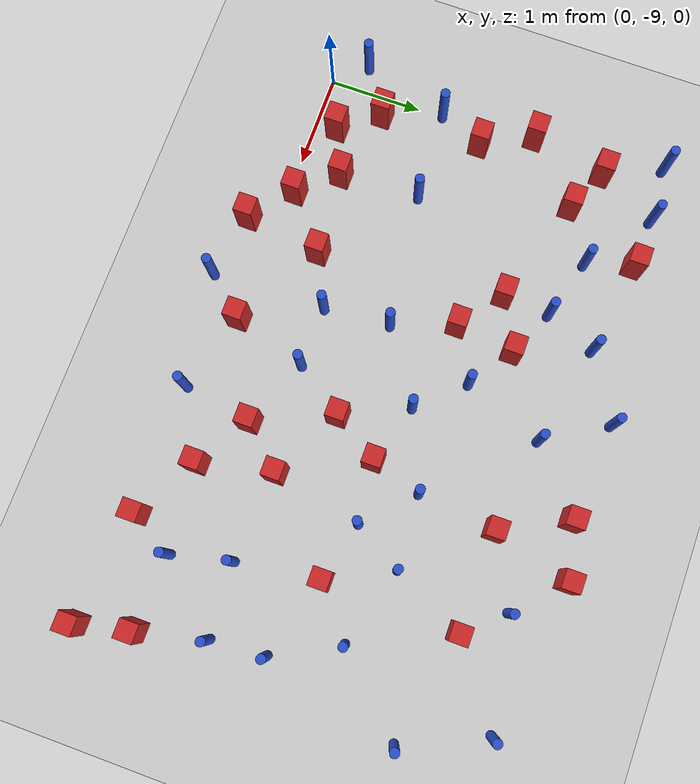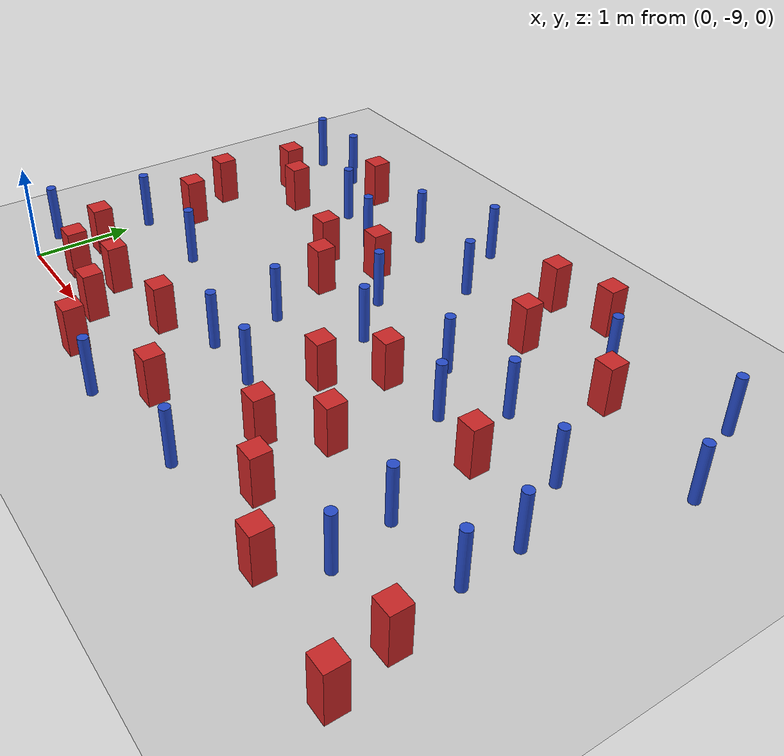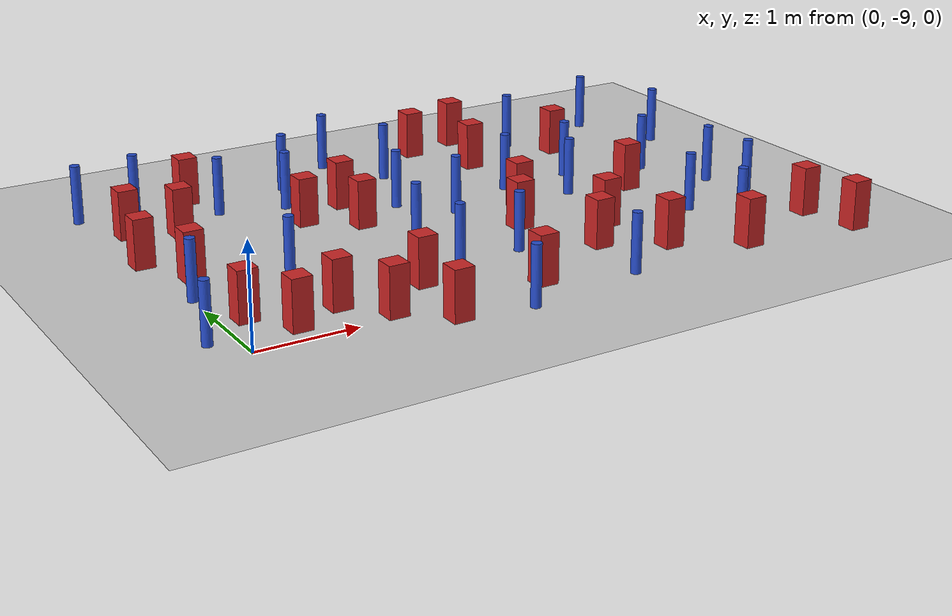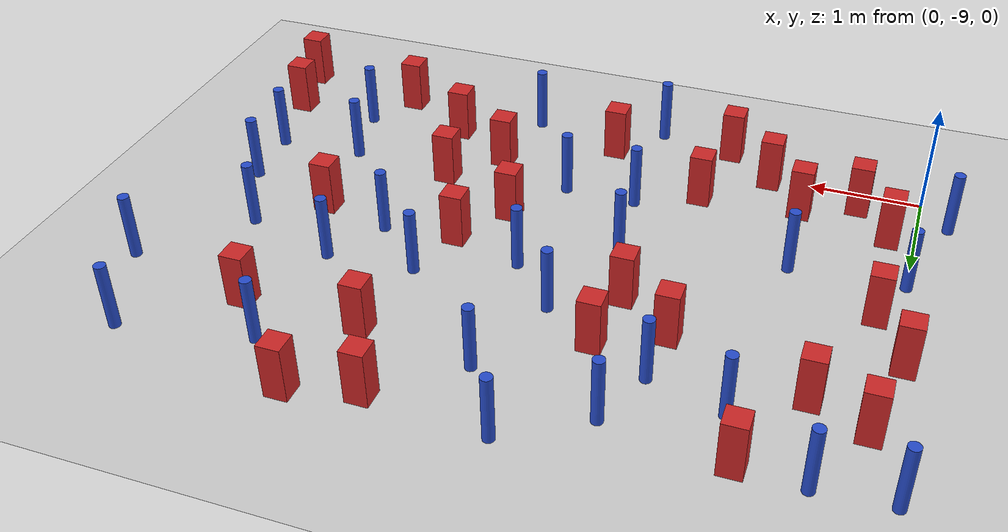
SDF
<sdf version="1.6">
 <world name="default">
  <model name="ground_plane">
   <static>1</static>
   <link name="link">
    <collision name="collision">
     <geometry><plane><normal>0 0 1</normal><size>100 100</size></plane></geometry>
     <surface><friction><ode><mu>100</mu><mu2>50</mu2></ode></friction></surface>
    </collision>
    <visual name="visual">
     <cast_shadows>0</cast_shadows>
     <geometry><plane><normal>0 0 1</normal><size>100 100</size></plane></geometry>
     <material>
      <ambient>1.0 1.0 1.0 1.0</ambient>
      <diffuse>0.8 0.8 0.8 1.0</diffuse>
      <specular>0.01 0.01 0.01 1.000000</specular>
     </material>
    </visual>
   </link>
  </model>
  <model name="pole_obstacle10">
   <static>true</static>
   <pose>3.1703029839 -6.97297233264 7.38925637345e-09 -8.47170692798e-08 1.24976765033e-08 -1.74513093019e-07</pose>
   <link name="link">
    <pose>0 0 0.3 0 -0 0</pose>
    <inertial>
     <mass>1</mass>
     <inertia><ixx>0.145833</ixx><ixy>0</ixy><ixz>0</ixz><iyy>0.145833</iyy><iyz>0</iyz><izz>0.125</izz></inertia>
    </inertial>
    <collision name="collision">
     <geometry><cylinder><radius>0.05</radius><length>.6</length></cylinder></geometry>
    </collision>
    <visual name="visual">
     <geometry><cylinder><radius>0.05</radius><length>.6</length></cylinder></geometry>
     <material>
      <script><name>Gazebo/Blue</name><uri>file://media/materials/scripts/gazebo.material</uri></script>
     </material>
    </visual>
   </link>
  </model>
  <model name="pole_obstacle11">
   <static>true</static>
   <pose>0.983680390515 -7.67062327463 7.38925637345e-09 -8.471706928e-08 1.24976765144e-08 -1.74513093012e-07</pose>
   <link name="link">
    <pose>0 0 0.3 0 -0 0</pose>
    <inertial>
     <mass>1</mass>
     <inertia><ixx>0.145833</ixx><ixy>0</ixy><ixz>0</ixz><iyy>0.145833</iyy><iyz>0</iyz><izz>0.125</izz></inertia>
    </inertial>
    <collision name="collision">
     <geometry><cylinder><radius>0.05</radius><length>.6</length></cylinder></geometry>
    </collision>
    <visual name="visual">
     <geometry><cylinder><radius>0.05</radius><length>.6</length></cylinder></geometry>
     <material>
      <script><name>Gazebo/Blue</name><uri>file://media/materials/scripts/gazebo.material</uri></script>
     </material>
    </visual>
   </link>
  </model>
  <model name="pole_obstacle12">
   <static>true</static>
   <pose>1.10796184703 -5.77790363404 7.38925637345e-09 -8.47170692799e-08 1.24976765033e-08 -1.74513093018e-07</pose>
   <link name="link">
    <pose>0 0 0.3 0 -0 0</pose>
    <inertial>
     <mass>1</mass>
     <inertia><ixx>0.145833</ixx><ixy>0</ixy><ixz>0</ixz><iyy>0.145833</iyy><iyz>0</iyz><izz>0.125</izz></inertia>
    </inertial>
    <collision name="collision">
     <geometry><cylinder><radius>0.05</radius><length>.6</length></cylinder></geometry>
    </collision>
    <visual name="visual">
     <geometry><cylinder><radius>0.05</radius><length>.6</length></cylinder></geometry>
     <material>
      <script><name>Gazebo/Blue</name><uri>file://media/materials/scripts/gazebo.material</uri></script>
     </material>
    </visual>
   </link>
  </model>
  <model name="square_post_obstacle19">
   <static>true</static>
   <pose>-0.0724727189926 -6.70868723467 1.91545236811e-07 -7.35059704564e-06 1.12565212e-07 2.39332434364e-05</pose>
   <link name="link">
    <pose>0 0 0.25 0 -0 0</pose>
    <inertial>
     <mass>100</mass>
     <inertia>
      <ixx>0.166667</ixx>
      <ixy>0</ixy>
      <ixz>0</ixz>
      <iyy>0.166667</iyy>
      <iyz>0</iyz>
      <izz>0.166667</izz>
     </inertia>
    </inertial>
    <collision name="collision"><geometry><box><size>.2 .2 .5</size></box></geometry></collision>
    <visual name="visual">
     <geometry><box><size>.2 .2 .5</size></box></geometry>
     <material>
      <script><name>Gazebo/Red</name><uri>file://media/materials/scripts/gazebo.material</uri></script>
     </material>
    </visual>
   </link>
  </model>
  <model name="square_post_obstacle21">
   <static>true</static>
   <pose>1.03362935635 -8.52608997644 1.91545236811e-07 -7.35059704564e-06 1.12565212e-07 2.39332434364e-05</pose>
   <link name="link">
    <pose>0 0 0.25 0 -0 0</pose>
    <inertial>
     <mass>100</mass>
     <inertia>
      <ixx>0.166667</ixx>
      <ixy>0</ixy>
      <ixz>0</ixz>
      <iyy>0.166667</iyy>
      <iyz>0</iyz>
      <izz>0.166667</izz>
     </inertia>
    </inertial>
    <collision name="collision"><geometry><box><size>.2 .2 .5</size></box></geometry></collision>
    <visual name="visual">
     <geometry><box><size>.2 .2 .5</size></box></geometry>
     <material>
      <script><name>Gazebo/Red</name><uri>file://media/materials/scripts/gazebo.material</uri></script>
     </material>
    </visual>
   </link>
  </model>
  <model name="square_post_obstacle22">
   <static>true</static>
   <pose>5.09969802318 -7.24370285172 1.91545236811e-07 -7.35059704564e-06 1.12565212e-07 2.39332434364e-05</pose>
   <link name="link">
    <pose>0 0 0.25 0 -0 0</pose>
    <inertial>
     <mass>100</mass>
     <inertia>
      <ixx>0.166667</ixx>
      <ixy>0</ixy>
      <ixz>0</ixz>
      <iyy>0.166667</iyy>
      <iyz>0</iyz>
      <izz>0.166667</izz>
     </inertia>
    </inertial>
    <collision name="collision"><geometry><box><size>.2 .2 .5</size></box></geometry></collision>
    <visual name="visual">
     <geometry><box><size>.2 .2 .5</size></box></geometry>
     <material>
      <script><name>Gazebo/Red</name><uri>file://media/materials/scripts/gazebo.material</uri></script>
     </material>
    </visual>
   </link>
  </model>
  <model name="pole_obstacle40">
   <static>true</static>
   <pose>2.66143875643 -4.99788259029 7.38925637345e-09 -8.47170692798e-08 1.24976765033e-08 -1.74513093019e-07</pose>
   <link name="link">
    <pose>0 0 0.3 0 -0 0</pose>
    <inertial>
     <mass>1</mass>
     <inertia><ixx>0.145833</ixx><ixy>0</ixy><ixz>0</ixz><iyy>0.145833</iyy><iyz>0</iyz><izz>0.125</izz></inertia>
    </inertial>
    <collision name="collision">
     <geometry><cylinder><radius>0.05</radius><length>.6</length></cylinder></geometry>
    </collision>
    <visual name="visual">
     <geometry><cylinder><radius>0.05</radius><length>.6</length></cylinder></geometry>
     <material>
      <script><name>Gazebo/Blue</name><uri>file://media/materials/scripts/gazebo.material</uri></script>
     </material>
    </visual>
   </link>
  </model>
  <model name="square_post_obstacle32">
   <static>true</static>
   <pose>4.43340542034 -8.83118302647 1.91545236811e-07 -7.35059704564e-06 1.12565212e-07 2.39332434364e-05</pose>
   <link name="link">
    <pose>0 0 0.25 0 -0 0</pose>
    <inertial>
     <mass>100</mass>
     <inertia>
      <ixx>0.166667</ixx>
      <ixy>0</ixy>
      <ixz>0</ixz>
      <iyy>0.166667</iyy>
      <iyz>0</iyz>
      <izz>0.166667</izz>
     </inertia>
    </inertial>
    <collision name="collision"><geometry><box><size>.2 .2 .5</size></box></geometry></collision>
    <visual name="visual">
     <geometry><box><size>.2 .2 .5</size></box></geometry>
     <material>
      <script><name>Gazebo/Red</name><uri>file://media/materials/scripts/gazebo.material</uri></script>
     </material>
    </visual>
   </link>
  </model>
  <model name="square_post_obstacle39">
   <static>true</static>
   <pose>5.1054562842 -9.20936905966 1.91545236811e-07 -7.35059704564e-06 1.12565212e-07 2.39332434364e-05</pose>
   <link name="link">
    <pose>0 0 0.25 0 -0 0</pose>
    <inertial>
     <mass>100</mass>
     <inertia>
      <ixx>0.166667</ixx>
      <ixy>0</ixy>
      <ixz>0</ixz>
      <iyy>0.166667</iyy>
      <iyz>0</iyz>
      <izz>0.166667</izz>
     </inertia>
    </inertial>
    <collision name="collision"><geometry><box><size>.2 .2 .5</size></box></geometry></collision>
    <visual name="visual">
     <geometry><box><size>.2 .2 .5</size></box></geometry>
     <material>
      <script><name>Gazebo/Red</name><uri>file://media/materials/scripts/gazebo.material</uri></script>
     </material>
    </visual>
   </link>
  </model>
  <model name="square_post_obstacle49">
   <static>true</static>
   <pose>0.555931448623 -6.10998923254 1.91545236811e-07 -7.35059704564e-06 1.12565212e-07 2.39332434364e-05</pose>
   <link name="link">
    <pose>0 0 0.25 0 -0 0</pose>
    <inertial>
     <mass>100</mass>
     <inertia>
      <ixx>0.166667</ixx>
      <ixy>0</ixy>
      <ixz>0</ixz>
      <iyy>0.166667</iyy>
      <iyz>0</iyz>
      <izz>0.166667</izz>
     </inertia>
    </inertial>
    <collision name="collision"><geometry><box><size>.2 .2 .5</size></box></geometry></collision>
    <visual name="visual">
     <geometry><box><size>.2 .2 .5</size></box></geometry>
     <material>
      <script><name>Gazebo/Red</name><uri>file://media/materials/scripts/gazebo.material</uri></script>
     </material>
    </visual>
   </link>
  </model>
  <model name="square_post_obstacle50">
   <static>true</static>
   <pose>4.26076043374 -8.04334189098 1.91545236811e-07 -7.35059704564e-06 1.12565212e-07 2.39332434364e-05</pose>
   <link name="link">
    <pose>0 0 0.25 0 -0 0</pose>
    <inertial>
     <mass>100</mass>
     <inertia>
      <ixx>0.166667</ixx>
      <ixy>0</ixy>
      <ixz>0</ixz>
      <iyy>0.166667</iyy>
      <iyz>0</iyz>
      <izz>0.166667</izz>
     </inertia>
    </inertial>
    <collision name="collision"><geometry><box><size>.2 .2 .5</size></box></geometry></collision>
    <visual name="visual">
     <geometry><box><size>.2 .2 .5</size></box></geometry>
     <material>
      <script><name>Gazebo/Red</name><uri>file://media/materials/scripts/gazebo.material</uri></script>
     </material>
    </visual>
   </link>
  </model>
  <model name="square_post_obstacle56">
   <static>true</static>
   <pose>4.06872304484 -5.78714098555 1.91545236811e-07 -7.35059704564e-06 1.12565212e-07 2.39332434364e-05</pose>
   <link name="link">
    <pose>0 0 0.25 0 -0 0</pose>
    <inertial>
     <mass>100</mass>
     <inertia>
      <ixx>0.166667</ixx>
      <ixy>0</ixy>
      <ixz>0</ixz>
      <iyy>0.166667</iyy>
      <iyz>0</iyz>
      <izz>0.166667</izz>
     </inertia>
    </inertial>
    <collision name="collision"><geometry><box><size>.2 .2 .5</size></box></geometry></collision>
    <visual name="visual">
     <geometry><box><size>.2 .2 .5</size></box></geometry>
     <material>
      <script><name>Gazebo/Red</name><uri>file://media/materials/scripts/gazebo.material</uri></script>
     </material>
    </visual>
   </link>
  </model>
  <model name="pole_obstacle73">
   <static>true</static>
   <pose>4.46687518273 -7.09056662381 7.38925637345e-09 -8.47170692796e-08 1.24976764786e-08 -1.74513093032e-07</pose>
   <link name="link">
    <pose>0 0 0.3 0 -0 0</pose>
    <inertial>
     <mass>1</mass>
     <inertia><ixx>0.145833</ixx><ixy>0</ixy><ixz>0</ixz><iyy>0.145833</iyy><iyz>0</iyz><izz>0.125</izz></inertia>
    </inertial>
    <collision name="collision">
     <geometry><cylinder><radius>0.05</radius><length>.6</length></cylinder></geometry>
    </collision>
    <visual name="visual">
     <geometry><cylinder><radius>0.05</radius><length>.6</length></cylinder></geometry>
     <material>
      <script><name>Gazebo/Blue</name><uri>file://media/materials/scripts/gazebo.material</uri></script>
     </material>
    </visual>
   </link>
  </model>
  <model name="pole_obstacle74">
   <static>true</static>
   <pose>6.33678386441 -6.04725509804 7.38925637345e-09 -8.47170692796e-08 1.24976764786e-08 -1.74513093032e-07</pose>
   <link name="link">
    <pose>0 0 0.3 0 -0 0</pose>
    <inertial>
     <mass>1</mass>
     <inertia><ixx>0.145833</ixx><ixy>0</ixy><ixz>0</ixz><iyy>0.145833</iyy><iyz>0</iyz><izz>0.125</izz></inertia>
    </inertial>
    <collision name="collision">
     <geometry><cylinder><radius>0.05</radius><length>.6</length></cylinder></geometry>
    </collision>
    <visual name="visual">
     <geometry><cylinder><radius>0.05</radius><length>.6</length></cylinder></geometry>
     <material>
      <script><name>Gazebo/Blue</name><uri>file://media/materials/scripts/gazebo.material</uri></script>
     </material>
    </visual>
   </link>
  </model>
  <model name="pole_obstacle76">
   <static>true</static>
   <pose>2.42033563123 -7.47985619556 7.38925637345e-09 -8.47170692798e-08 1.24976765033e-08 -1.74513093019e-07</pose>
   <link name="link">
    <pose>0 0 0.3 0 -0 0</pose>
    <inertial>
     <mass>1</mass>
     <inertia><ixx>0.145833</ixx><ixy>0</ixy><ixz>0</ixz><iyy>0.145833</iyy><iyz>0</iyz><izz>0.125</izz></inertia>
    </inertial>
    <collision name="collision">
     <geometry><cylinder><radius>0.05</radius><length>.6</length></cylinder></geometry>
    </collision>
    <visual name="visual">
     <geometry><cylinder><radius>0.05</radius><length>.6</length></cylinder></geometry>
     <material>
      <script><name>Gazebo/Blue</name><uri>file://media/materials/scripts/gazebo.material</uri></script>
     </material>
    </visual>
   </link>
  </model>
  <model name="pole_obstacle85">
   <static>true</static>
   <pose>0.417072804881 -5.25463096501 7.38925637345e-09 -8.471706928e-08 1.24976765079e-08 -1.74513093015e-07</pose>
   <link name="link">
    <pose>0 0 0.3 0 -0 0</pose>
    <inertial>
     <mass>1</mass>
     <inertia><ixx>0.145833</ixx><ixy>0</ixy><ixz>0</ixz><iyy>0.145833</iyy><iyz>0</iyz><izz>0.125</izz></inertia>
    </inertial>
    <collision name="collision">
     <geometry><cylinder><radius>0.05</radius><length>.6</length></cylinder></geometry>
    </collision>
    <visual name="visual">
     <geometry><cylinder><radius>0.05</radius><length>.6</length></cylinder></geometry>
     <material>
      <script><name>Gazebo/Blue</name><uri>file://media/materials/scripts/gazebo.material</uri></script>
     </material>
    </visual>
   </link>
  </model>
  <model name="pole_obstacle86">
   <static>true</static>
   <pose>-0.189228235769 -5.29356077039 7.38925637345e-09 -8.47170692799e-08 1.24976765068e-08 -1.74513093018e-07</pose>
   <link name="link">
    <pose>0 0 0.3 0 -0 0</pose>
    <inertial>
     <mass>1</mass>
     <inertia><ixx>0.145833</ixx><ixy>0</ixy><ixz>0</ixz><iyy>0.145833</iyy><iyz>0</iyz><izz>0.125</izz></inertia>
    </inertial>
    <collision name="collision">
     <geometry><cylinder><radius>0.05</radius><length>.6</length></cylinder></geometry>
    </collision>
    <visual name="visual">
     <geometry><cylinder><radius>0.05</radius><length>.6</length></cylinder></geometry>
     <material>
      <script><name>Gazebo/Blue</name><uri>file://media/materials/scripts/gazebo.material</uri></script>
     </material>
    </visual>
   </link>
  </model>
  <model name="square_post_obstacle75">
   <static>true</static>
   <pose>3.4981273184 -7.65652750813 1.91545236811e-07 -7.35059704564e-06 1.12565212e-07 2.39332434364e-05</pose>
   <link name="link">
    <pose>0 0 0.25 0 -0 0</pose>
    <inertial>
     <mass>100</mass>
     <inertia>
      <ixx>0.166667</ixx>
      <ixy>0</ixy>
      <ixz>0</ixz>
      <iyy>0.166667</iyy>
      <iyz>0</iyz>
      <izz>0.166667</izz>
     </inertia>
    </inertial>
    <collision name="collision"><geometry><box><size>.2 .2 .5</size></box></geometry></collision>
    <visual name="visual">
     <geometry><box><size>.2 .2 .5</size></box></geometry>
     <material>
      <script><name>Gazebo/Red</name><uri>file://media/materials/scripts/gazebo.material</uri></script>
     </material>
    </visual>
   </link>
  </model>
  <model name="square_post_obstacle92">
   <static>true</static>
   <pose>6.30461932808 -9.37592968788 1.91545236811e-07 -7.35059704564e-06 1.12565212e-07 2.39332434364e-05</pose>
   <link name="link">
    <pose>0 0 0.25 0 -0 0</pose>
    <inertial>
     <mass>100</mass>
     <inertia>
      <ixx>0.166667</ixx>
      <ixy>0</ixy>
      <ixz>0</ixz>
      <iyy>0.166667</iyy>
      <iyz>0</iyz>
      <izz>0.166667</izz>
     </inertia>
    </inertial>
    <collision name="collision"><geometry><box><size>.2 .2 .5</size></box></geometry></collision>
    <visual name="visual">
     <geometry><box><size>.2 .2 .5</size></box></geometry>
     <material>
      <script><name>Gazebo/Red</name><uri>file://media/materials/scripts/gazebo.material</uri></script>
     </material>
    </visual>
   </link>
  </model>
  <model name="square_post_obstacle94">
   <static>true</static>
   <pose>1.72505933252 -6.46990505975 1.91545236811e-07 -7.35059704564e-06 1.12565212e-07 2.39332434364e-05</pose>
   <link name="link">
    <pose>0 0 0.25 0 -0 0</pose>
    <inertial>
     <mass>100</mass>
     <inertia>
      <ixx>0.166667</ixx>
      <ixy>0</ixy>
      <ixz>0</ixz>
      <iyy>0.166667</iyy>
      <iyz>0</iyz>
      <izz>0.166667</izz>
     </inertia>
    </inertial>
    <collision name="collision"><geometry><box><size>.2 .2 .5</size></box></geometry></collision>
    <visual name="visual">
     <geometry><box><size>.2 .2 .5</size></box></geometry>
     <material>
      <script><name>Gazebo/Red</name><uri>file://media/materials/scripts/gazebo.material</uri></script>
     </material>
    </visual>
   </link>
  </model>
  <model name="pole_obstacle102">
   <static>true</static>
   <pose>5.23372738075 -8.13172029675 7.38925637345e-09 -8.471706928e-08 1.24976765081e-08 -1.74513093015e-07</pose>
   <link name="link">
    <pose>0 0 0.3 0 -0 0</pose>
    <inertial>
     <mass>1</mass>
     <inertia><ixx>0.145833</ixx><ixy>0</ixy><ixz>0</ixz><iyy>0.145833</iyy><iyz>0</iyz><izz>0.125</izz></inertia>
    </inertial>
    <collision name="collision">
     <geometry><cylinder><radius>0.05</radius><length>.6</length></cylinder></geometry>
    </collision>
    <visual name="visual">
     <geometry><cylinder><radius>0.05</radius><length>.6</length></cylinder></geometry>
     <material>
      <script><name>Gazebo/Blue</name><uri>file://media/materials/scripts/gazebo.material</uri></script>
     </material>
    </visual>
   </link>
  </model>
  <model name="pole_obstacle103">
   <static>true</static>
   <pose>4.7886705059 -5.39762330678 7.38925637345e-09 -8.47170692796e-08 1.24976764786e-08 -1.74513093032e-07</pose>
   <link name="link">
    <pose>0 0 0.3 0 -0 0</pose>
    <inertial>
     <mass>1</mass>
     <inertia><ixx>0.145833</ixx><ixy>0</ixy><ixz>0</ixz><iyy>0.145833</iyy><iyz>0</iyz><izz>0.125</izz></inertia>
    </inertial>
    <collision name="collision">
     <geometry><cylinder><radius>0.05</radius><length>.6</length></cylinder></geometry>
    </collision>
    <visual name="visual">
     <geometry><cylinder><radius>0.05</radius><length>.6</length></cylinder></geometry>
     <material>
      <script><name>Gazebo/Blue</name><uri>file://media/materials/scripts/gazebo.material</uri></script>
     </material>
    </visual>
   </link>
  </model>
  <model name="square_post_obstacle98">
   <static>true</static>
   <pose>2.18868649435 -6.82100554461 1.91545236811e-07 -7.35059704564e-06 1.12565212e-07 2.39332434364e-05</pose>
   <link name="link">
    <pose>0 0 0.25 0 -0 0</pose>
    <inertial>
     <mass>100</mass>
     <inertia>
      <ixx>0.166667</ixx>
      <ixy>0</ixy>
      <ixz>0</ixz>
      <iyy>0.166667</iyy>
      <iyz>0</iyz>
      <izz>0.166667</izz>
     </inertia>
    </inertial>
    <collision name="collision"><geometry><box><size>.2 .2 .5</size></box></geometry></collision>
    <visual name="visual">
     <geometry><box><size>.2 .2 .5</size></box></geometry>
     <material>
      <script><name>Gazebo/Red</name><uri>file://media/materials/scripts/gazebo.material</uri></script>
     </material>
    </visual>
   </link>
  </model>
  <model name="pole_obstacle109">
   <static>true</static>
   <pose>2.48100772865 -8.18891334359 7.38925637345e-09 -8.47170692793e-08 1.24976764408e-08 -1.74513093041e-07</pose>
   <link name="link">
    <pose>0 0 0.3 0 -0 0</pose>
    <inertial>
     <mass>1</mass>
     <inertia><ixx>0.145833</ixx><ixy>0</ixy><ixz>0</ixz><iyy>0.145833</iyy><iyz>0</iyz><izz>0.125</izz></inertia>
    </inertial>
    <collision name="collision">
     <geometry><cylinder><radius>0.05</radius><length>.6</length></cylinder></geometry>
    </collision>
    <visual name="visual">
     <geometry><cylinder><radius>0.05</radius><length>.6</length></cylinder></geometry>
     <material>
      <script><name>Gazebo/Blue</name><uri>file://media/materials/scripts/gazebo.material</uri></script>
     </material>
    </visual>
   </link>
  </model>
  <model name="pole_obstacle114">
   <static>true</static>
   <pose>3.13246578591 -8.19828329651 7.38925637345e-09 -8.47170692793e-08 1.24976764408e-08 -1.74513093041e-07</pose>
   <link name="link">
    <pose>0 0 0.3 0 -0 0</pose>
    <inertial>
     <mass>1</mass>
     <inertia><ixx>0.145833</ixx><ixy>0</ixy><ixz>0</ixz><iyy>0.145833</iyy><iyz>0</iyz><izz>0.125</izz></inertia>
    </inertial>
    <collision name="collision">
     <geometry><cylinder><radius>0.05</radius><length>.6</length></cylinder></geometry>
    </collision>
    <visual name="visual">
     <geometry><cylinder><radius>0.05</radius><length>.6</length></cylinder></geometry>
     <material>
      <script><name>Gazebo/Blue</name><uri>file://media/materials/scripts/gazebo.material</uri></script>
     </material>
    </visual>
   </link>
  </model>
  <model name="square_post_obstacle112">
   <static>true</static>
   <pose>5.13251254335 -5.80364294433 1.91545236811e-07 -7.35059704564e-06 1.12565212e-07 2.39332434364e-05</pose>
   <link name="link">
    <pose>0 0 0.25 0 -0 0</pose>
    <inertial>
     <mass>100</mass>
     <inertia>
      <ixx>0.166667</ixx>
      <ixy>0</ixy>
      <ixz>0</ixz>
      <iyy>0.166667</iyy>
      <iyz>0</iyz>
      <izz>0.166667</izz>
     </inertia>
    </inertial>
    <collision name="collision"><geometry><box><size>.2 .2 .5</size></box></geometry></collision>
    <visual name="visual">
     <geometry><box><size>.2 .2 .5</size></box></geometry>
     <material>
      <script><name>Gazebo/Red</name><uri>file://media/materials/scripts/gazebo.material</uri></script>
     </material>
    </visual>
   </link>
  </model>
  <model name="square_post_obstacle116">
   <static>true</static>
   <pose>1.80866934084 -9.28205349043 1.91545236811e-07 -7.35059704564e-06 1.12565212e-07 2.39332434364e-05</pose>
   <link name="link">
    <pose>0 0 0.25 0 -0 0</pose>
    <inertial>
     <mass>100</mass>
     <inertia>
      <ixx>0.166667</ixx>
      <ixy>0</ixy>
      <ixz>0</ixz>
      <iyy>0.166667</iyy>
      <iyz>0</iyz>
      <izz>0.166667</izz>
     </inertia>
    </inertial>
    <collision name="collision"><geometry><box><size>.2 .2 .5</size></box></geometry></collision>
    <visual name="visual">
     <geometry><box><size>.2 .2 .5</size></box></geometry>
     <material>
      <script><name>Gazebo/Red</name><uri>file://media/materials/scripts/gazebo.material</uri></script>
     </material>
    </visual>
   </link>
  </model>
  <model name="square_post_obstacle119">
   <static>true</static>
   <pose>2.87968242865 -8.98380233681 1.91545236811e-07 -7.35059704564e-06 1.12565212e-07 2.39332434364e-05</pose>
   <link name="link">
    <pose>0 0 0.25 0 -0 0</pose>
    <inertial>
     <mass>100</mass>
     <inertia>
      <ixx>0.166667</ixx>
      <ixy>0</ixy>
      <ixz>0</ixz>
      <iyy>0.166667</iyy>
      <iyz>0</iyz>
      <izz>0.166667</izz>
     </inertia>
    </inertial>
    <collision name="collision"><geometry><box><size>.2 .2 .5</size></box></geometry></collision>
    <visual name="visual">
     <geometry><box><size>.2 .2 .5</size></box></geometry>
     <material>
      <script><name>Gazebo/Red</name><uri>file://media/materials/scripts/gazebo.material</uri></script>
     </material>
    </visual>
   </link>
  </model>
  <model name="pole_obstacle120">
   <static>true</static>
   <pose>3.06437324797 -5.652648721 7.38925637345e-09 -8.47170692798e-08 1.24976765033e-08 -1.74513093019e-07</pose>
   <link name="link">
    <pose>0 0 0.3 0 -0 0</pose>
    <inertial>
     <mass>1</mass>
     <inertia><ixx>0.145833</ixx><ixy>0</ixy><ixz>0</ixz><iyy>0.145833</iyy><iyz>0</iyz><izz>0.125</izz></inertia>
    </inertial>
    <collision name="collision">
     <geometry><cylinder><radius>0.05</radius><length>.6</length></cylinder></geometry>
    </collision>
    <visual name="visual">
     <geometry><cylinder><radius>0.05</radius><length>.6</length></cylinder></geometry>
     <material>
      <script><name>Gazebo/Blue</name><uri>file://media/materials/scripts/gazebo.material</uri></script>
     </material>
    </visual>
   </link>
  </model>
  <model name="square_post_obstacle121">
   <static>true</static>
   <pose>3.71244147093 -5.09058006 1.91545236811e-07 -7.35059704564e-06 1.12565212e-07 2.39332434364e-05</pose>
   <link name="link">
    <pose>0 0 0.25 0 -0 0</pose>
    <inertial>
     <mass>100</mass>
     <inertia>
      <ixx>0.166667</ixx>
      <ixy>0</ixy>
      <ixz>0</ixz>
      <iyy>0.166667</iyy>
      <iyz>0</iyz>
      <izz>0.166667</izz>
     </inertia>
    </inertial>
    <collision name="collision"><geometry><box><size>.2 .2 .5</size></box></geometry></collision>
    <visual name="visual">
     <geometry><box><size>.2 .2 .5</size></box></geometry>
     <material>
      <script><name>Gazebo/Red</name><uri>file://media/materials/scripts/gazebo.material</uri></script>
     </material>
    </visual>
   </link>
  </model>
  <model name="pole_obstacle141">
   <static>true</static>
   <pose>5.94559134048 -5.18586401756 7.38925637345e-09 -8.47170692796e-08 1.24976764786e-08 -1.74513093032e-07</pose>
   <link name="link">
    <pose>0 0 0.3 0 -0 0</pose>
    <inertial>
     <mass>1</mass>
     <inertia><ixx>0.145833</ixx><ixy>0</ixy><ixz>0</ixz><iyy>0.145833</iyy><iyz>0</iyz><izz>0.125</izz></inertia>
    </inertial>
    <collision name="collision">
     <geometry><cylinder><radius>0.05</radius><length>.6</length></cylinder></geometry>
    </collision>
    <visual name="visual">
     <geometry><cylinder><radius>0.05</radius><length>.6</length></cylinder></geometry>
     <material>
      <script><name>Gazebo/Blue</name><uri>file://media/materials/scripts/gazebo.material</uri></script>
     </material>
    </visual>
   </link>
  </model>
  <model name="pole_obstacle145">
   <static>true</static>
   <pose>3.73564953144 -9.23345430363 7.38925637345e-09 -8.47170692793e-08 1.24976764408e-08 -1.74513093041e-07</pose>
   <link name="link">
    <pose>0 0 0.3 0 -0 0</pose>
    <inertial>
     <mass>1</mass>
     <inertia><ixx>0.145833</ixx><ixy>0</ixy><ixz>0</ixz><iyy>0.145833</iyy><iyz>0</iyz><izz>0.125</izz></inertia>
    </inertial>
    <collision name="collision">
     <geometry><cylinder><radius>0.05</radius><length>.6</length></cylinder></geometry>
    </collision>
    <visual name="visual">
     <geometry><cylinder><radius>0.05</radius><length>.6</length></cylinder></geometry>
     <material>
      <script><name>Gazebo/Blue</name><uri>file://media/materials/scripts/gazebo.material</uri></script>
     </material>
    </visual>
   </link>
  </model>
  <model name="square_post_obstacle141">
   <static>true</static>
   <pose>0.229889351839 -8.34318246683 1.91545236811e-07 -7.35059704564e-06 1.12565212e-07 2.39332434364e-05</pose>
   <link name="link">
    <pose>0 0 0.25 0 -0 0</pose>
    <inertial>
     <mass>100</mass>
     <inertia>
      <ixx>0.166667</ixx>
      <ixy>0</ixy>
      <ixz>0</ixz>
      <iyy>0.166667</iyy>
      <iyz>0</iyz>
      <izz>0.166667</izz>
     </inertia>
    </inertial>
    <collision name="collision"><geometry><box><size>.2 .2 .5</size></box></geometry></collision>
    <visual name="visual">
     <geometry><box><size>.2 .2 .5</size></box></geometry>
     <material>
      <script><name>Gazebo/Red</name><uri>file://media/materials/scripts/gazebo.material</uri></script>
     </material>
    </visual>
   </link>
  </model>
  <model name="pole_obstacle151">
   <static>true</static>
   <pose>3.9799464218 -6.61976906689 7.38925637345e-09 -8.47170692798e-08 1.24976764915e-08 -1.74513093026e-07</pose>
   <link name="link">
    <pose>0 0 0.3 0 -0 0</pose>
    <inertial>
     <mass>1</mass>
     <inertia><ixx>0.145833</ixx><ixy>0</ixy><ixz>0</ixz><iyy>0.145833</iyy><iyz>0</iyz><izz>0.125</izz></inertia>
    </inertial>
    <collision name="collision">
     <geometry><cylinder><radius>0.05</radius><length>.6</length></cylinder></geometry>
    </collision>
    <visual name="visual">
     <geometry><cylinder><radius>0.05</radius><length>.6</length></cylinder></geometry>
     <material>
      <script><name>Gazebo/Blue</name><uri>file://media/materials/scripts/gazebo.material</uri></script>
     </material>
    </visual>
   </link>
  </model>
  <model name="pole_obstacle153">
   <static>true</static>
   <pose>4.76580248344 -6.56621628357 7.38925637345e-09 -8.47170692796e-08 1.24976764786e-08 -1.74513093032e-07</pose>
   <link name="link">
    <pose>0 0 0.3 0 -0 0</pose>
    <inertial>
     <mass>1</mass>
     <inertia><ixx>0.145833</ixx><ixy>0</ixy><ixz>0</ixz><iyy>0.145833</iyy><iyz>0</iyz><izz>0.125</izz></inertia>
    </inertial>
    <collision name="collision">
     <geometry><cylinder><radius>0.05</radius><length>.6</length></cylinder></geometry>
    </collision>
    <visual name="visual">
     <geometry><cylinder><radius>0.05</radius><length>.6</length></cylinder></geometry>
     <material>
      <script><name>Gazebo/Blue</name><uri>file://media/materials/scripts/gazebo.material</uri></script>
     </material>
    </visual>
   </link>
  </model>
  <model name="pole_obstacle158">
   <static>true</static>
   <pose>5.97281116155 -7.49747539144 7.38925637345e-09 -8.47170692796e-08 1.24976764786e-08 -1.74513093032e-07</pose>
   <link name="link">
    <pose>0 0 0.3 0 -0 0</pose>
    <inertial>
     <mass>1</mass>
     <inertia><ixx>0.145833</ixx><ixy>0</ixy><ixz>0</ixz><iyy>0.145833</iyy><iyz>0</iyz><izz>0.125</izz></inertia>
    </inertial>
    <collision name="collision">
     <geometry><cylinder><radius>0.05</radius><length>.6</length></cylinder></geometry>
    </collision>
    <visual name="visual">
     <geometry><cylinder><radius>0.05</radius><length>.6</length></cylinder></geometry>
     <material>
      <script><name>Gazebo/Blue</name><uri>file://media/materials/scripts/gazebo.material</uri></script>
     </material>
    </visual>
   </link>
  </model>
  <model name="pole_obstacle159">
   <static>true</static>
   <pose>1.76154018008 -5.96151709383 7.38925637345e-09 -8.47170692799e-08 1.24976765033e-08 -1.74513093018e-07</pose>
   <link name="link">
    <pose>0 0 0.3 0 -0 0</pose>
    <inertial>
     <mass>1</mass>
     <inertia><ixx>0.145833</ixx><ixy>0</ixy><ixz>0</ixz><iyy>0.145833</iyy><iyz>0</iyz><izz>0.125</izz></inertia>
    </inertial>
    <collision name="collision">
     <geometry><cylinder><radius>0.05</radius><length>.6</length></cylinder></geometry>
    </collision>
    <visual name="visual">
     <geometry><cylinder><radius>0.05</radius><length>.6</length></cylinder></geometry>
     <material>
      <script><name>Gazebo/Blue</name><uri>file://media/materials/scripts/gazebo.material</uri></script>
     </material>
    </visual>
   </link>
  </model>
  <model name="square_post_obstacle156">
   <static>true</static>
   <pose>0.200325030159 -7.24479141687 1.91545236811e-07 -7.35059704564e-06 1.12565212e-07 2.39332434364e-05</pose>
   <link name="link">
    <pose>0 0 0.25 0 -0 0</pose>
    <inertial>
     <mass>100</mass>
     <inertia>
      <ixx>0.166667</ixx>
      <ixy>0</ixy>
      <ixz>0</ixz>
      <iyy>0.166667</iyy>
      <iyz>0</iyz>
      <izz>0.166667</izz>
     </inertia>
    </inertial>
    <collision name="collision"><geometry><box><size>.2 .2 .5</size></box></geometry></collision>
    <visual name="visual">
     <geometry><box><size>.2 .2 .5</size></box></geometry>
     <material>
      <script><name>Gazebo/Red</name><uri>file://media/materials/scripts/gazebo.material</uri></script>
     </material>
    </visual>
   </link>
  </model>
  <model name="pole_obstacle165">
   <static>true</static>
   <pose>6.01590157862 -8.08557440881 7.38925637345e-09 -8.471706928e-08 1.24976765081e-08 -1.74513093015e-07</pose>
   <link name="link">
    <pose>0 0 0.3 0 -0 0</pose>
    <inertial>
     <mass>1</mass>
     <inertia><ixx>0.145833</ixx><ixy>0</ixy><ixz>0</ixz><iyy>0.145833</iyy><iyz>0</iyz><izz>0.125</izz></inertia>
    </inertial>
    <collision name="collision">
     <geometry><cylinder><radius>0.05</radius><length>.6</length></cylinder></geometry>
    </collision>
    <visual name="visual">
     <geometry><cylinder><radius>0.05</radius><length>.6</length></cylinder></geometry>
     <material>
      <script><name>Gazebo/Blue</name><uri>file://media/materials/scripts/gazebo.material</uri></script>
     </material>
    </visual>
   </link>
  </model>
  <model name="square_post_obstacle160">
   <static>true</static>
   <pose>1.37683871091 -8.91965066821 1.91545236811e-07 -7.35059704564e-06 1.12565212e-07 2.39332434364e-05</pose>
   <link name="link">
    <pose>0 0 0.25 0 -0 0</pose>
    <inertial>
     <mass>100</mass>
     <inertia>
      <ixx>0.166667</ixx>
      <ixy>0</ixy>
      <ixz>0</ixz>
      <iyy>0.166667</iyy>
      <iyz>0</iyz>
      <izz>0.166667</izz>
     </inertia>
    </inertial>
    <collision name="collision"><geometry><box><size>.2 .2 .5</size></box></geometry></collision>
    <visual name="visual">
     <geometry><box><size>.2 .2 .5</size></box></geometry>
     <material>
      <script><name>Gazebo/Red</name><uri>file://media/materials/scripts/gazebo.material</uri></script>
     </material>
    </visual>
   </link>
  </model>
  <model name="square_post_obstacle161">
   <static>true</static>
   <pose>2.26910733237 -6.19505798571 1.91545236811e-07 -7.35059704564e-06 1.12565212e-07 2.39332434364e-05</pose>
   <link name="link">
    <pose>0 0 0.25 0 -0 0</pose>
    <inertial>
     <mass>100</mass>
     <inertia>
      <ixx>0.166667</ixx>
      <ixy>0</ixy>
      <ixz>0</ixz>
      <iyy>0.166667</iyy>
      <iyz>0</iyz>
      <izz>0.166667</izz>
     </inertia>
    </inertial>
    <collision name="collision"><geometry><box><size>.2 .2 .5</size></box></geometry></collision>
    <visual name="visual">
     <geometry><box><size>.2 .2 .5</size></box></geometry>
     <material>
      <script><name>Gazebo/Red</name><uri>file://media/materials/scripts/gazebo.material</uri></script>
     </material>
    </visual>
   </link>
  </model>
  <model name="square_post_obstacle168">
   <static>true</static>
   <pose>0.0847775372866 -5.90505663985 1.91545236811e-07 -7.35059704564e-06 1.12565212e-07 2.39332434364e-05</pose>
   <link name="link">
    <pose>0 0 0.25 0 -0 0</pose>
    <inertial>
     <mass>100</mass>
     <inertia>
      <ixx>0.166667</ixx>
      <ixy>0</ixy>
      <ixz>0</ixz>
      <iyy>0.166667</iyy>
      <iyz>0</iyz>
      <izz>0.166667</izz>
     </inertia>
    </inertial>
    <collision name="collision"><geometry><box><size>.2 .2 .5</size></box></geometry></collision>
    <visual name="visual">
     <geometry><box><size>.2 .2 .5</size></box></geometry>
     <material>
      <script><name>Gazebo/Red</name><uri>file://media/materials/scripts/gazebo.material</uri></script>
     </material>
    </visual>
   </link>
  </model>
  <model name="pole_obstacle171">
   <static>true</static>
   <pose>-0.261487222944 -8.67396426429 7.38925637345e-09 -8.47170692796e-08 1.24976764755e-08 -1.74513093035e-07</pose>
   <link name="link">
    <pose>0 0 0.3 0 -0 0</pose>
    <inertial>
     <mass>1</mass>
     <inertia><ixx>0.145833</ixx><ixy>0</ixy><ixz>0</ixz><iyy>0.145833</iyy><iyz>0</iyz><izz>0.125</izz></inertia>
    </inertial>
    <collision name="collision">
     <geometry><cylinder><radius>0.05</radius><length>.6</length></cylinder></geometry>
    </collision>
    <visual name="visual">
     <geometry><cylinder><radius>0.05</radius><length>.6</length></cylinder></geometry>
     <material>
      <script><name>Gazebo/Blue</name><uri>file://media/materials/scripts/gazebo.material</uri></script>
     </material>
    </visual>
   </link>
  </model>
  <model name="pole_obstacle176">
   <static>true</static>
   <pose>2.74177719308 -6.50942421708 7.38925637345e-09 -8.47170692798e-08 1.24976765033e-08 -1.74513093019e-07</pose>
   <link name="link">
    <pose>0 0 0.3 0 -0 0</pose>
    <inertial>
     <mass>1</mass>
     <inertia><ixx>0.145833</ixx><ixy>0</ixy><ixz>0</ixz><iyy>0.145833</iyy><iyz>0</iyz><izz>0.125</izz></inertia>
    </inertial>
    <collision name="collision">
     <geometry><cylinder><radius>0.05</radius><length>.6</length></cylinder></geometry>
    </collision>
    <visual name="visual">
     <geometry><cylinder><radius>0.05</radius><length>.6</length></cylinder></geometry>
     <material>
      <script><name>Gazebo/Blue</name><uri>file://media/materials/scripts/gazebo.material</uri></script>
     </material>
    </visual>
   </link>
  </model>
  <model name="pole_obstacle179">
   <static>true</static>
   <pose>2.51354412766 -9.4150944134 7.38925637345e-09 -8.47170692793e-08 1.24976764408e-08 -1.74513093041e-07</pose>
   <link name="link">
    <pose>0 0 0.3 0 -0 0</pose>
    <inertial>
     <mass>1</mass>
     <inertia><ixx>0.145833</ixx><ixy>0</ixy><ixz>0</ixz><iyy>0.145833</iyy><iyz>0</iyz><izz>0.125</izz></inertia>
    </inertial>
    <collision name="collision">
     <geometry><cylinder><radius>0.05</radius><length>.6</length></cylinder></geometry>
    </collision>
    <visual name="visual">
     <geometry><cylinder><radius>0.05</radius><length>.6</length></cylinder></geometry>
     <material>
      <script><name>Gazebo/Blue</name><uri>file://media/materials/scripts/gazebo.material</uri></script>
     </material>
    </visual>
   </link>
  </model>
  <model name="square_post_obstacle189">
   <static>true</static>
   <pose>3.8600203997 -8.48182099476 1.91545236811e-07 -7.35059704564e-06 1.12565212e-07 2.39332434364e-05</pose>
   <link name="link">
    <pose>0 0 0.25 0 -0 0</pose>
    <inertial>
     <mass>100</mass>
     <inertia>
      <ixx>0.166667</ixx>
      <ixy>0</ixy>
      <ixz>0</ixz>
      <iyy>0.166667</iyy>
      <iyz>0</iyz>
      <izz>0.166667</izz>
     </inertia>
    </inertial>
    <collision name="collision"><geometry><box><size>.2 .2 .5</size></box></geometry></collision>
    <visual name="visual">
     <geometry><box><size>.2 .2 .5</size></box></geometry>
     <material>
      <script><name>Gazebo/Red</name><uri>file://media/materials/scripts/gazebo.material</uri></script>
     </material>
    </visual>
   </link>
  </model>
  <model name="square_post_obstacle204">
   <static>true</static>
   <pose>1.92995858771 -8.45421944203 1.91545236811e-07 -7.35059704564e-06 1.12565212e-07 2.39332434364e-05</pose>
   <link name="link">
    <pose>0 0 0.25 0 -0 0</pose>
    <inertial>
     <mass>100</mass>
     <inertia>
      <ixx>0.166667</ixx>
      <ixy>0</ixy>
      <ixz>0</ixz>
      <iyy>0.166667</iyy>
      <iyz>0</iyz>
      <izz>0.166667</izz>
     </inertia>
    </inertial>
    <collision name="collision"><geometry><box><size>.2 .2 .5</size></box></geometry></collision>
    <visual name="visual">
     <geometry><box><size>.2 .2 .5</size></box></geometry>
     <material>
      <script><name>Gazebo/Red</name><uri>file://media/materials/scripts/gazebo.material</uri></script>
     </material>
    </visual>
   </link>
  </model>
  <model name="square_post_obstacle206">
   <static>true</static>
   <pose>4.30622759884 -4.95020051178 1.91545236811e-07 -7.35059704564e-06 1.12565212e-07 2.39332434364e-05</pose>
   <link name="link">
    <pose>0 0 0.25 0 -0 0</pose>
    <inertial>
     <mass>100</mass>
     <inertia>
      <ixx>0.166667</ixx>
      <ixy>0</ixy>
      <ixz>0</ixz>
      <iyy>0.166667</iyy>
      <iyz>0</iyz>
      <izz>0.166667</izz>
     </inertia>
    </inertial>
    <collision name="collision"><geometry><box><size>.2 .2 .5</size></box></geometry></collision>
    <visual name="visual">
     <geometry><box><size>.2 .2 .5</size></box></geometry>
     <material>
      <script><name>Gazebo/Red</name><uri>file://media/materials/scripts/gazebo.material</uri></script>
     </material>
    </visual>
   </link>
  </model>
  <model name="pole_obstacle197">
   <static>true</static>
   <pose>5.38082039806 -8.76206497143 7.38925637345e-09 -8.471706928e-08 1.24976765081e-08 -1.74513093015e-07</pose>
   <link name="link">
    <pose>0 0 0.3 0 -0 0</pose>
    <inertial>
     <mass>1</mass>
     <inertia><ixx>0.145833</ixx><ixy>0</ixy><ixz>0</ixz><iyy>0.145833</iyy><iyz>0</iyz><izz>0.125</izz></inertia>
    </inertial>
    <collision name="collision">
     <geometry><cylinder><radius>0.05</radius><length>.6</length></cylinder></geometry>
    </collision>
    <visual name="visual">
     <geometry><cylinder><radius>0.05</radius><length>.6</length></cylinder></geometry>
     <material>
      <script><name>Gazebo/Blue</name><uri>file://media/materials/scripts/gazebo.material</uri></script>
     </material>
    </visual>
   </link>
  </model>
  <model name="pole_obstacle199">
   <static>true</static>
   <pose>5.6127727342 -6.81483020597 7.38925637345e-09 -8.47170692796e-08 1.24976764786e-08 -1.74513093032e-07</pose>
   <link name="link">
    <pose>0 0 0.3 0 -0 0</pose>
    <inertial>
     <mass>1</mass>
     <inertia><ixx>0.145833</ixx><ixy>0</ixy><ixz>0</ixz><iyy>0.145833</iyy><iyz>0</iyz><izz>0.125</izz></inertia>
    </inertial>
    <collision name="collision">
     <geometry><cylinder><radius>0.05</radius><length>.6</length></cylinder></geometry>
    </collision>
    <visual name="visual">
     <geometry><cylinder><radius>0.05</radius><length>.6</length></cylinder></geometry>
     <material>
      <script><name>Gazebo/Blue</name><uri>file://media/materials/scripts/gazebo.material</uri></script>
     </material>
    </visual>
   </link>
  </model>
  <model name="pole_obstacle203">
   <static>true</static>
   <pose>1.97958076874 -5.41981260535 7.38925637345e-09 -8.471706928e-08 1.24976765202e-08 -1.7451309301e-07</pose>
   <link name="link">
    <pose>0 0 0.3 0 -0 0</pose>
    <inertial>
     <mass>1</mass>
     <inertia><ixx>0.145833</ixx><ixy>0</ixy><ixz>0</ixz><iyy>0.145833</iyy><iyz>0</iyz><izz>0.125</izz></inertia>
    </inertial>
    <collision name="collision">
     <geometry><cylinder><radius>0.05</radius><length>.6</length></cylinder></geometry>
    </collision>
    <visual name="visual">
     <geometry><cylinder><radius>0.05</radius><length>.6</length></cylinder></geometry>
     <material>
      <script><name>Gazebo/Blue</name><uri>file://media/materials/scripts/gazebo.material</uri></script>
     </material>
    </visual>
   </link>
  </model>
  <model name="pole_obstacle210">
   <static>true</static>
   <pose>0.00527393106486 -7.72955421369 7.38925637345e-09 -8.47170692799e-08 1.24976765051e-08 -1.74513093018e-07</pose>
   <link name="link">
    <pose>0 0 0.3 0 -0 0</pose>
    <inertial>
     <mass>1</mass>
     <inertia><ixx>0.145833</ixx><ixy>0</ixy><ixz>0</ixz><iyy>0.145833</iyy><iyz>0</iyz><izz>0.125</izz></inertia>
    </inertial>
    <collision name="collision">
     <geometry><cylinder><radius>0.05</radius><length>.6</length></cylinder></geometry>
    </collision>
    <visual name="visual">
     <geometry><cylinder><radius>0.05</radius><length>.6</length></cylinder></geometry>
     <material>
      <script><name>Gazebo/Blue</name><uri>file://media/materials/scripts/gazebo.material</uri></script>
     </material>
    </visual>
   </link>
  </model>
  <model name="square_post_obstacle211">
   <static>true</static>
   <pose>6.17335035089 -8.80049609011 1.91545236811e-07 -7.35059704564e-06 1.12565212e-07 2.39332434364e-05</pose>
   <link name="link">
    <pose>0 0 0.25 0 -0 0</pose>
    <inertial>
     <mass>100</mass>
     <inertia>
      <ixx>0.166667</ixx>
      <ixy>0</ixy>
      <ixz>0</ixz>
      <iyy>0.166667</iyy>
      <iyz>0</iyz>
      <izz>0.166667</izz>
     </inertia>
    </inertial>
    <collision name="collision"><geometry><box><size>.2 .2 .5</size></box></geometry></collision>
    <visual name="visual">
     <geometry><box><size>.2 .2 .5</size></box></geometry>
     <material>
      <script><name>Gazebo/Red</name><uri>file://media/materials/scripts/gazebo.material</uri></script>
     </material>
    </visual>
   </link>
  </model>
  <model name="square_post_obstacle215">
   <static>true</static>
   <pose>3.81071670525 -7.15968216557 1.91545236811e-07 -7.35059704564e-06 1.12565212e-07 2.39332434364e-05</pose>
   <link name="link">
    <pose>0 0 0.25 0 -0 0</pose>
    <inertial>
     <mass>100</mass>
     <inertia>
      <ixx>0.166667</ixx>
      <ixy>0</ixy>
      <ixz>0</ixz>
      <iyy>0.166667</iyy>
      <iyz>0</iyz>
      <izz>0.166667</izz>
     </inertia>
    </inertial>
    <collision name="collision"><geometry><box><size>.2 .2 .5</size></box></geometry></collision>
    <visual name="visual">
     <geometry><box><size>.2 .2 .5</size></box></geometry>
     <material>
      <script><name>Gazebo/Red</name><uri>file://media/materials/scripts/gazebo.material</uri></script>
     </material>
    </visual>
   </link>
  </model>
  <model name="square_post_obstacle220">
   <static>true</static>
   <pose>0.956664140166 -5.28442988473 1.91545236811e-07 -7.35059704564e-06 1.12565212e-07 2.39332434364e-05</pose>
   <link name="link">
    <pose>0 0 0.25 0 -0 0</pose>
    <inertial>
     <mass>100</mass>
     <inertia>
      <ixx>0.166667</ixx>
      <ixy>0</ixy>
      <ixz>0</ixz>
      <iyy>0.166667</iyy>
      <iyz>0</iyz>
      <izz>0.166667</izz>
     </inertia>
    </inertial>
    <collision name="collision"><geometry><box><size>.2 .2 .5</size></box></geometry></collision>
    <visual name="visual">
     <geometry><box><size>.2 .2 .5</size></box></geometry>
     <material>
      <script><name>Gazebo/Red</name><uri>file://media/materials/scripts/gazebo.material</uri></script>
     </material>
    </visual>
   </link>
  </model>
  <model name="square_post_obstacle222">
   <static>true</static>
   <pose>0.541070397308 -8.74957535711 1.91545236811e-07 -7.35059704564e-06 1.12565212e-07 2.39332434364e-05</pose>
   <link name="link">
    <pose>0 0 0.25 0 -0 0</pose>
    <inertial>
     <mass>100</mass>
     <inertia>
      <ixx>0.166667</ixx>
      <ixy>0</ixy>
      <ixz>0</ixz>
      <iyy>0.166667</iyy>
      <iyz>0</iyz>
      <izz>0.166667</izz>
     </inertia>
    </inertial>
    <collision name="collision"><geometry><box><size>.2 .2 .5</size></box></geometry></collision>
    <visual name="visual">
     <geometry><box><size>.2 .2 .5</size></box></geometry>
     <material>
      <script><name>Gazebo/Red</name><uri>file://media/materials/scripts/gazebo.material</uri></script>
     </material>
    </visual>
   </link>
  </model>
 </world>
</sdf>
